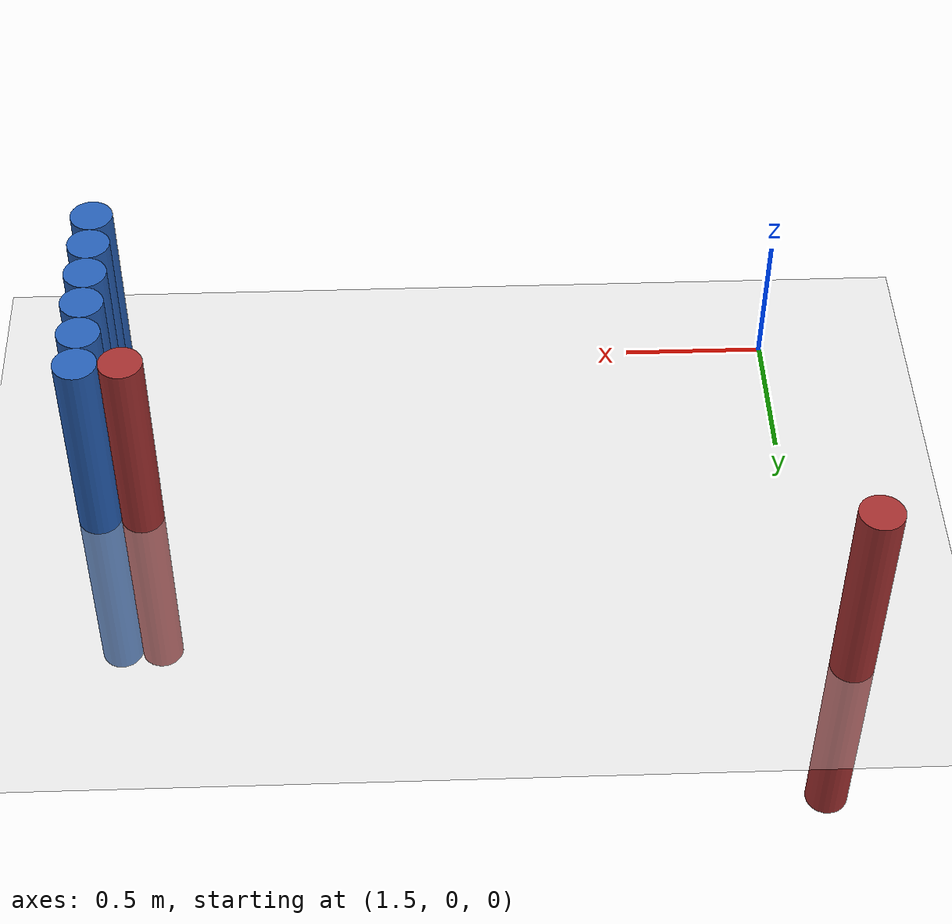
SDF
<sdf version="1.6">
 <world name="default">
  <model name="ground_plane">
   <static>1</static>
   <link name="link">
    <collision name="collision">
     <geometry><plane><normal>0 0 1</normal><size>100 100</size></plane></geometry>
     <surface><friction><ode><mu>100</mu><mu2>50</mu2></ode></friction></surface>
    </collision>
    <visual name="visual">
     <cast_shadows>0</cast_shadows>
     <geometry><plane><normal>0 0 1</normal><size>100 100</size></plane></geometry>
     <material>
      <script><uri>file://media/materials/scripts/gazebo.material</uri><name>Gazebo/Grey</name></script>
     </material>
    </visual>
   </link>
  </model>
  <model name="unit_cylinder_116">
   <static>1</static>
   <pose>3.925000 0.175000 0.000000 0.000000 0.000000 0.000000</pose>
   <link name="link">
    <inertial>
     <mass>1</mass>
     <inertia><ixx>0.145833</ixx><ixy>0</ixy><ixz>0</ixz><iyy>0.145833</iyy><iyz>0</iyz><izz>0.125</izz></inertia>
    </inertial>
    <collision name="collision">
     <geometry><cylinder><radius>0.075000</radius><length>1.5</length></cylinder></geometry>
    </collision>
    <visual name="visual">
     <geometry><cylinder><radius>0.075000</radius><length>1.5</length></cylinder></geometry>
     <material>
      <ambient>0.152000 0.379000 0.720000 1</ambient>
      <diffuse>0.152000 0.379000 0.720000 1</diffuse>
     </material>
     <material>
      <script><name>Gazebo/Grey</name><uri>file://media/materials/scripts/gazebo.material</uri></script>
     </material>
    </visual>
   </link>
  </model>
  <model name="unit_cylinder_118">
   <static>1</static>
   <pose>3.925000 0.325000 0.000000 0.000000 0.000000 0.000000</pose>
   <link name="link">
    <inertial>
     <mass>1</mass>
     <inertia><ixx>0.145833</ixx><ixy>0</ixy><ixz>0</ixz><iyy>0.145833</iyy><iyz>0</iyz><izz>0.125</izz></inertia>
    </inertial>
    <collision name="collision">
     <geometry><cylinder><radius>0.075000</radius><length>1.5</length></cylinder></geometry>
    </collision>
    <visual name="visual">
     <geometry><cylinder><radius>0.075000</radius><length>1.5</length></cylinder></geometry>
     <material>
      <ambient>0.152000 0.379000 0.720000 1</ambient>
      <diffuse>0.152000 0.379000 0.720000 1</diffuse>
     </material>
     <material>
      <script><name>Gazebo/Grey</name><uri>file://media/materials/scripts/gazebo.material</uri></script>
     </material>
    </visual>
   </link>
  </model>
  <model name="unit_cylinder_120">
   <static>1</static>
   <pose>3.925000 0.475000 0.000000 0.000000 0.000000 0.000000</pose>
   <link name="link">
    <inertial>
     <mass>1</mass>
     <inertia><ixx>0.145833</ixx><ixy>0</ixy><ixz>0</ixz><iyy>0.145833</iyy><iyz>0</iyz><izz>0.125</izz></inertia>
    </inertial>
    <collision name="collision">
     <geometry><cylinder><radius>0.075000</radius><length>1.5</length></cylinder></geometry>
    </collision>
    <visual name="visual">
     <geometry><cylinder><radius>0.075000</radius><length>1.5</length></cylinder></geometry>
     <material>
      <ambient>0.152000 0.379000 0.720000 1</ambient>
      <diffuse>0.152000 0.379000 0.720000 1</diffuse>
     </material>
     <material>
      <script><name>Gazebo/Grey</name><uri>file://media/materials/scripts/gazebo.material</uri></script>
     </material>
    </visual>
   </link>
  </model>
  <model name="unit_cylinder_122">
   <static>1</static>
   <pose>3.925000 0.625000 0.000000 0.000000 0.000000 0.000000</pose>
   <link name="link">
    <inertial>
     <mass>1</mass>
     <inertia><ixx>0.145833</ixx><ixy>0</ixy><ixz>0</ixz><iyy>0.145833</iyy><iyz>0</iyz><izz>0.125</izz></inertia>
    </inertial>
    <collision name="collision">
     <geometry><cylinder><radius>0.075000</radius><length>1.5</length></cylinder></geometry>
    </collision>
    <visual name="visual">
     <geometry><cylinder><radius>0.075000</radius><length>1.5</length></cylinder></geometry>
     <material>
      <ambient>0.152000 0.379000 0.720000 1</ambient>
      <diffuse>0.152000 0.379000 0.720000 1</diffuse>
     </material>
     <material>
      <script><name>Gazebo/Grey</name><uri>file://media/materials/scripts/gazebo.material</uri></script>
     </material>
    </visual>
   </link>
  </model>
  <model name="unit_cylinder_124">
   <static>1</static>
   <pose>3.925000 0.775000 0.000000 0.000000 0.000000 0.000000</pose>
   <link name="link">
    <inertial>
     <mass>1</mass>
     <inertia><ixx>0.145833</ixx><ixy>0</ixy><ixz>0</ixz><iyy>0.145833</iyy><iyz>0</iyz><izz>0.125</izz></inertia>
    </inertial>
    <collision name="collision">
     <geometry><cylinder><radius>0.075000</radius><length>1.5</length></cylinder></geometry>
    </collision>
    <visual name="visual">
     <geometry><cylinder><radius>0.075000</radius><length>1.5</length></cylinder></geometry>
     <material>
      <ambient>0.152000 0.379000 0.720000 1</ambient>
      <diffuse>0.152000 0.379000 0.720000 1</diffuse>
     </material>
     <material>
      <script><name>Gazebo/Grey</name><uri>file://media/materials/scripts/gazebo.material</uri></script>
     </material>
    </visual>
   </link>
  </model>
  <model name="unit_cylinder_283">
   <static>1</static>
   <pose>1.375000 1.525000 0.000000 0.000000 0.000000 0.000000</pose>
   <link name="link">
    <inertial>
     <mass>1</mass>
     <inertia><ixx>0.145833</ixx><ixy>0</ixy><ixz>0</ixz><iyy>0.145833</iyy><iyz>0</iyz><izz>0.125</izz></inertia>
    </inertial>
    <collision name="collision">
     <geometry><cylinder><radius>0.075000</radius><length>1.5</length></cylinder></geometry>
    </collision>
    <visual name="visual">
     <geometry><cylinder><radius>0.075000</radius><length>1.5</length></cylinder></geometry>
     <material>
      <ambient>0.648000 0.192000 0.192000 1</ambient>
      <diffuse>0.648000 0.192000 0.192000 1</diffuse>
     </material>
     <material>
      <script><name>Gazebo/Grey</name><uri>file://media/materials/scripts/gazebo.material</uri></script>
     </material>
    </visual>
   </link>
  </model>
  <model name="unit_cylinder_293">
   <static>1</static>
   <pose>3.775000 0.775000 0.000000 0.000000 0.000000 0.000000</pose>
   <link name="link">
    <inertial>
     <mass>1</mass>
     <inertia><ixx>0.145833</ixx><ixy>0</ixy><ixz>0</ixz><iyy>0.145833</iyy><iyz>0</iyz><izz>0.125</izz></inertia>
    </inertial>
    <collision name="collision">
     <geometry><cylinder><radius>0.075000</radius><length>1.5</length></cylinder></geometry>
    </collision>
    <visual name="visual">
     <geometry><cylinder><radius>0.075000</radius><length>1.5</length></cylinder></geometry>
     <material>
      <ambient>0.648000 0.192000 0.192000 1</ambient>
      <diffuse>0.648000 0.192000 0.192000 1</diffuse>
     </material>
     <material>
      <script><name>Gazebo/Grey</name><uri>file://media/materials/scripts/gazebo.material</uri></script>
     </material>
    </visual>
   </link>
  </model>
  <model name="unit_cylinder_316">
   <static>1</static>
   <pose>3.925000 0.025000 0.000000 0.000000 0.000000 0.000000</pose>
   <link name="link">
    <inertial>
     <mass>1</mass>
     <inertia><ixx>0.145833</ixx><ixy>0</ixy><ixz>0</ixz><iyy>0.145833</iyy><iyz>0</iyz><izz>0.125</izz></inertia>
    </inertial>
    <collision name="collision">
     <geometry><cylinder><radius>0.075000</radius><length>1.5</length></cylinder></geometry>
    </collision>
    <visual name="visual">
     <geometry><cylinder><radius>0.075000</radius><length>1.5</length></cylinder></geometry>
     <material>
      <ambient>0.152000 0.379000 0.720000 1</ambient>
      <diffuse>0.152000 0.379000 0.720000 1</diffuse>
     </material>
     <material>
      <script><name>Gazebo/Grey</name><uri>file://media/materials/scripts/gazebo.material</uri></script>
     </material>
    </visual>
   </link>
  </model>
  <model name="unit_cylinder_317">
   <static>1</static>
   <pose>3.925000 0.175000 0.000000 0.000000 0.000000 0.000000</pose>
   <link name="link">
    <inertial>
     <mass>1</mass>
     <inertia><ixx>0.145833</ixx><ixy>0</ixy><ixz>0</ixz><iyy>0.145833</iyy><iyz>0</iyz><izz>0.125</izz></inertia>
    </inertial>
    <collision name="collision">
     <geometry><cylinder><radius>0.075000</radius><length>1.5</length></cylinder></geometry>
    </collision>
    <visual name="visual">
     <geometry><cylinder><radius>0.075000</radius><length>1.5</length></cylinder></geometry>
     <material>
      <ambient>0.152000 0.379000 0.720000 1</ambient>
      <diffuse>0.152000 0.379000 0.720000 1</diffuse>
     </material>
     <material>
      <script><name>Gazebo/Grey</name><uri>file://media/materials/scripts/gazebo.material</uri></script>
     </material>
    </visual>
   </link>
  </model>
  <model name="unit_cylinder_318">
   <static>1</static>
   <pose>3.925000 0.325000 0.000000 0.000000 0.000000 0.000000</pose>
   <link name="link">
    <inertial>
     <mass>1</mass>
     <inertia><ixx>0.145833</ixx><ixy>0</ixy><ixz>0</ixz><iyy>0.145833</iyy><iyz>0</iyz><izz>0.125</izz></inertia>
    </inertial>
    <collision name="collision">
     <geometry><cylinder><radius>0.075000</radius><length>1.5</length></cylinder></geometry>
    </collision>
    <visual name="visual">
     <geometry><cylinder><radius>0.075000</radius><length>1.5</length></cylinder></geometry>
     <material>
      <ambient>0.152000 0.379000 0.720000 1</ambient>
      <diffuse>0.152000 0.379000 0.720000 1</diffuse>
     </material>
     <material>
      <script><name>Gazebo/Grey</name><uri>file://media/materials/scripts/gazebo.material</uri></script>
     </material>
    </visual>
   </link>
  </model>
  <model name="unit_cylinder_319">
   <static>1</static>
   <pose>3.925000 0.475000 0.000000 0.000000 0.000000 0.000000</pose>
   <link name="link">
    <inertial>
     <mass>1</mass>
     <inertia><ixx>0.145833</ixx><ixy>0</ixy><ixz>0</ixz><iyy>0.145833</iyy><iyz>0</iyz><izz>0.125</izz></inertia>
    </inertial>
    <collision name="collision">
     <geometry><cylinder><radius>0.075000</radius><length>1.5</length></cylinder></geometry>
    </collision>
    <visual name="visual">
     <geometry><cylinder><radius>0.075000</radius><length>1.5</length></cylinder></geometry>
     <material>
      <ambient>0.152000 0.379000 0.720000 1</ambient>
      <diffuse>0.152000 0.379000 0.720000 1</diffuse>
     </material>
     <material>
      <script><name>Gazebo/Grey</name><uri>file://media/materials/scripts/gazebo.material</uri></script>
     </material>
    </visual>
   </link>
  </model>
  <model name="unit_cylinder_320">
   <static>1</static>
   <pose>3.925000 0.625000 0.000000 0.000000 0.000000 0.000000</pose>
   <link name="link">
    <inertial>
     <mass>1</mass>
     <inertia><ixx>0.145833</ixx><ixy>0</ixy><ixz>0</ixz><iyy>0.145833</iyy><iyz>0</iyz><izz>0.125</izz></inertia>
    </inertial>
    <collision name="collision">
     <geometry><cylinder><radius>0.075000</radius><length>1.5</length></cylinder></geometry>
    </collision>
    <visual name="visual">
     <geometry><cylinder><radius>0.075000</radius><length>1.5</length></cylinder></geometry>
     <material>
      <ambient>0.152000 0.379000 0.720000 1</ambient>
      <diffuse>0.152000 0.379000 0.720000 1</diffuse>
     </material>
     <material>
      <script><name>Gazebo/Grey</name><uri>file://media/materials/scripts/gazebo.material</uri></script>
     </material>
    </visual>
   </link>
  </model>
 </world>
</sdf>
